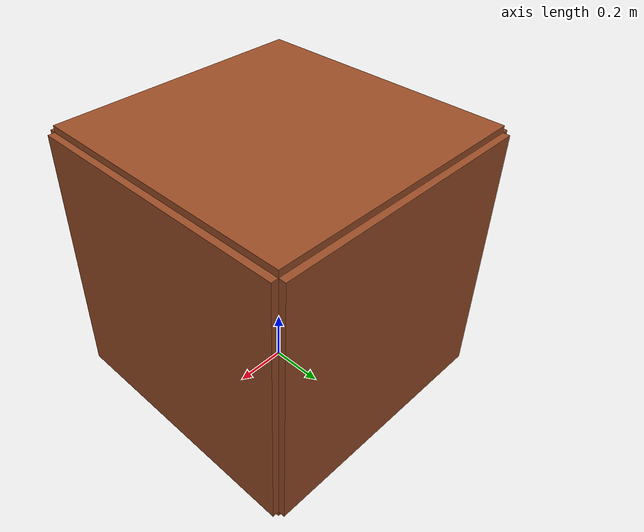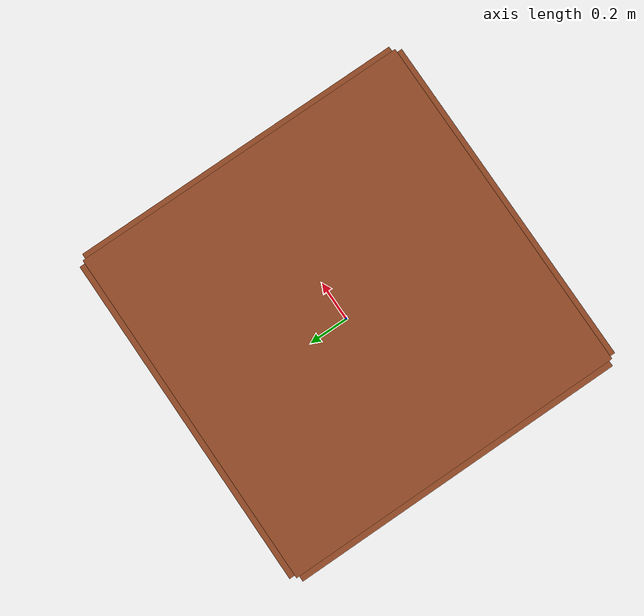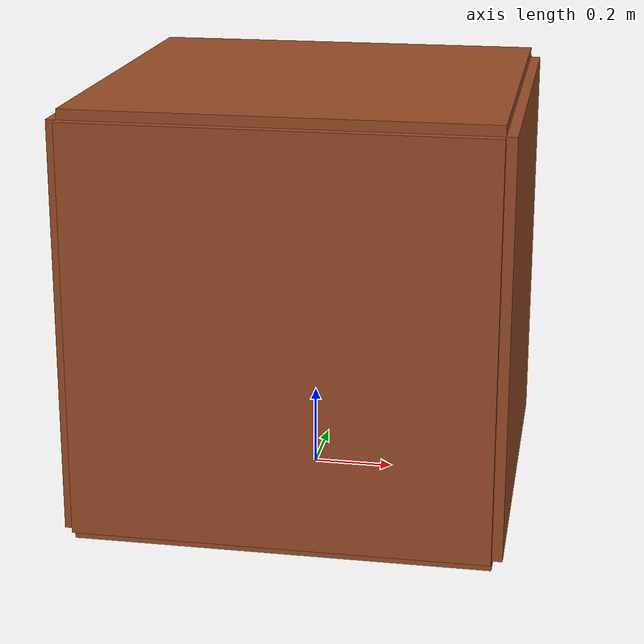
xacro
<?xml version="1.0"?>
<robot name="my_robot" xmlns:xacro="http://www.ros.org/wiki/xacro">

  <!-- MATERIAL -->
  <material name="wood_brown">
    <color rgba="0.6 0.3 0.15 1.0"/>
  </material>

  <!-- BASE -->
  <link name="base_link">
    <visual>
      <geometry>
        <box size="1 1 0.05"/>
      </geometry>
      <material name="wood_brown"/>
      <origin xyz="0 0 0" rpy="0 0 0"/>
    </visual>
  </link>

  <!-- RIGHT -->
  <link name="right_link">
    <visual>
      <geometry>
        <box size="1 1 0.05"/>
      </geometry>
      <material name="wood_brown"/>
      <origin xyz="0 0 0.5" rpy="${pi / 2.0} 0 0"/>
    </visual>
  </link>

  <joint name="right_to_bottom" type="fixed">
    <parent link="base_link"/>
    <child link="right_link"/>
    <origin xyz="0 0.5 0" rpy="0 0 0"/>
  </joint>

  <!-- LEFT -->
  <link name="left_link">
    <visual>
      <geometry>
        <box size="1 1 0.05"/>
      </geometry>
      <material name="wood_brown"/>
      <origin xyz="0 0 0.5" rpy="${pi / 2.0} 0 0"/>
    </visual>
  </link>

  <joint name="left_to_bottom" type="fixed">
    <parent link="base_link"/>
    <child link="left_link"/>
    <origin xyz="0 -0.5 0" rpy="0 0 0"/>
  </joint>

  <!-- BACK -->
  <link name="back_link">
    <visual>
      <geometry>
        <box size="1 1 0.05"/>
      </geometry>
      <material name="wood_brown"/>
      <origin xyz="0 0 0.5" rpy="${pi / 2.0} 0 ${pi / 2.0}"/>
    </visual>
  </link>

  <joint name="back_to_bottom" type="fixed">
    <parent link="base_link"/>
    <child link="back_link"/>
    <origin xyz="-0.5 0 0" rpy="0 0 0"/>
  </joint>

  <!-- FRONT -->
  <link name="front_link">
    <visual>
      <geometry>
        <box size="1 1 0.05"/>
      </geometry>
      <material name="wood_brown"/>
      <origin xyz="0 0 0.5" rpy="${pi / 2.0} 0 ${pi / 2.0}"/>
    </visual>
  </link>

  <joint name="front_to_bottom" type="fixed">
    <parent link="base_link"/>
    <child link="front_link"/>
    <origin xyz="0.5 0 0" rpy="0 0 0"/>
  </joint>

  <!-- TOP (LID) -->
  <link name="top_link">
    <visual>
      <geometry>
        <box size="1 1 0.05"/>
      </geometry>
      <material name="wood_brown"/>
      <origin xyz="0.5 0 0" rpy="0 0 0"/>
    </visual>
  </link>

  <joint name="top_to_back" type="revolute">
    <axis xyz="0 -1 0"/>
    <parent link="back_link"/>
    <child link="top_link"/>
    <origin xyz="0 0 1" rpy="0 0 0"/>
    <limit effort="1000" lower="0" upper="${pi / 2.0}" velocity="0.5"/>
  </joint>

</robot>
